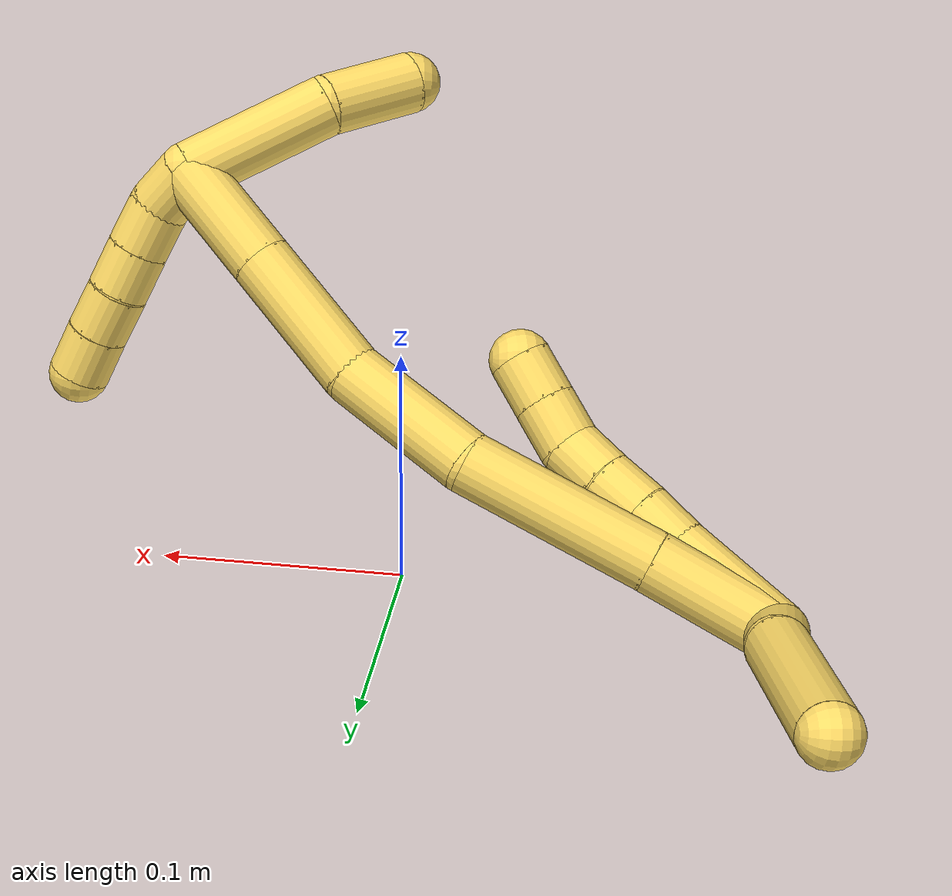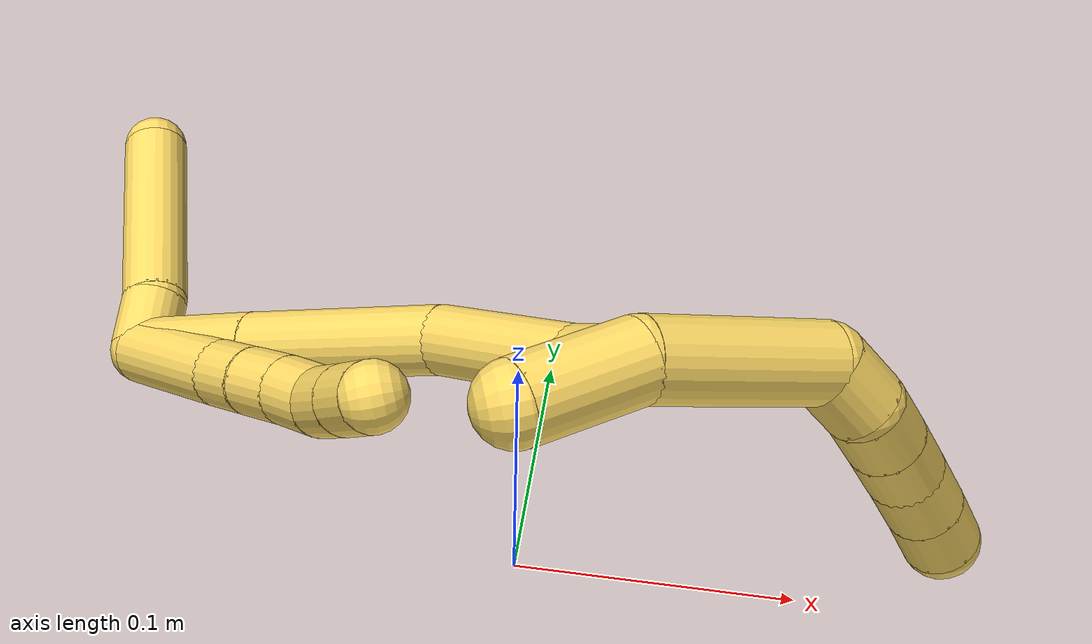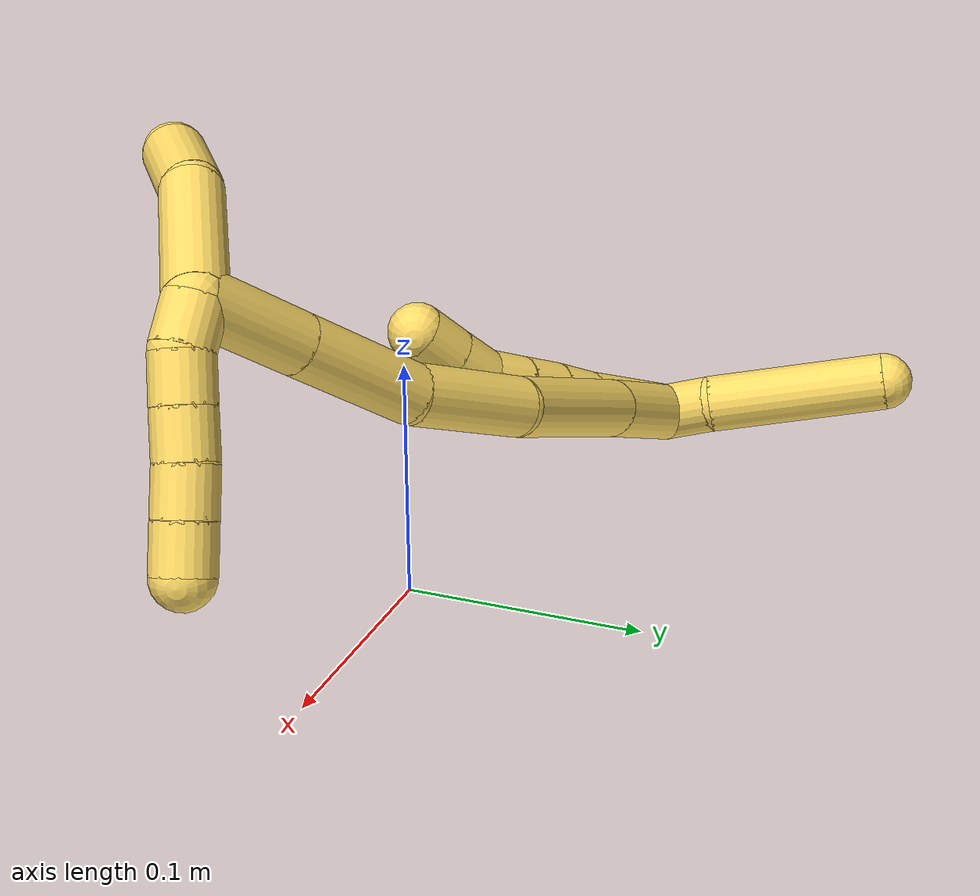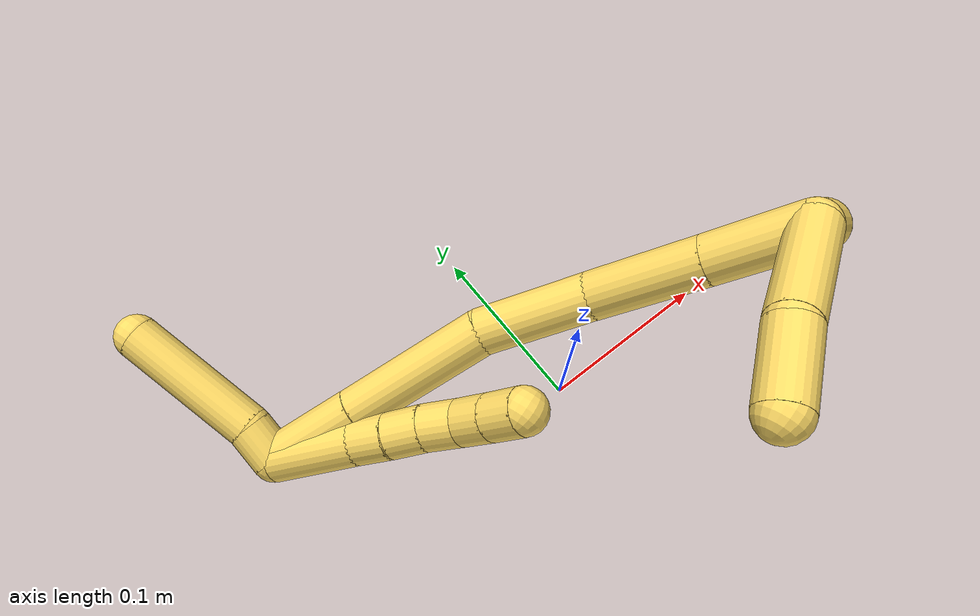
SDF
<sdf version="1.7">
 <world name="default">
  <model name="5">
   <static>0</static>
   <link name="5">
    <collision name="collision-cylinder-e_1_2_8">
     <pose>0.017433 -0.008065 -0.015884 2.67179 0.774574 2.08038</pose>
     <geometry><cylinder><radius>0.0125</radius><length>0.049849</length></cylinder></geometry>
     <surface>
      <friction><ode><mu>1.16</mu><mu2>1.16</mu2><slip1>0</slip1><slip2>0</slip2></ode></friction>
      <contact><ode><kp>1e+06</kp><kd>1</kd><max_vel>0</max_vel><min_depth>0.001</min_depth></ode></contact>
     </surface>
    </collision>
    <visual name="visual-cylinder-e_1_2_8">
     <pose>0.017433 -0.008065 -0.015884 2.67179 0.774574 2.08038</pose>
     <geometry><cylinder><radius>0.0125</radius><length>0.049849</length></cylinder></geometry>
     <material><ambient>1 0.858824 0.4 1</ambient></material>
    </visual>
    <collision name="collision-cylinder-e_2_8_9">
     <pose>0.042393 -0.018974 -0.037802 2.70107 0.845688 2.21821</pose>
     <geometry><cylinder><radius>0.0125</radius><length>0.020115</length></cylinder></geometry>
     <surface>
      <friction><ode><mu>1.16</mu><mu2>1.16</mu2><slip1>0</slip1><slip2>0</slip2></ode></friction>
      <contact><ode><kp>1e+06</kp><kd>1</kd><max_vel>0</max_vel><min_depth>0.001</min_depth></ode></contact>
     </surface>
    </collision>
    <visual name="visual-cylinder-e_2_8_9">
     <pose>0.042393 -0.018974 -0.037802 2.70107 0.845688 2.21821</pose>
     <geometry><cylinder><radius>0.0125</radius><length>0.020115</length></cylinder></geometry>
     <material><ambient>1 0.858824 0.4 1</ambient></material>
    </visual>
    <collision name="collision-cylinder-e_3_9_10">
     <pose>0.056943 -0.024879 -0.050283 2.69839 0.777293 2.13557</pose>
     <geometry><cylinder><radius>0.0125</radius><length>0.020027</length></cylinder></geometry>
     <surface>
      <friction><ode><mu>1.16</mu><mu2>1.16</mu2><slip1>0</slip1><slip2>0</slip2></ode></friction>
      <contact><ode><kp>1e+06</kp><kd>1</kd><max_vel>0</max_vel><min_depth>0.001</min_depth></ode></contact>
     </surface>
    </collision>
    <visual name="visual-cylinder-e_3_9_10">
     <pose>0.056943 -0.024879 -0.050283 2.69839 0.777293 2.13557</pose>
     <geometry><cylinder><radius>0.0125</radius><length>0.020027</length></cylinder></geometry>
     <material><ambient>1 0.858824 0.4 1</ambient></material>
    </visual>
    <collision name="collision-cylinder-e_4_10_11">
     <pose>0.071313 -0.031284 -0.062635 2.62619 0.825221 2.05766</pose>
     <geometry><cylinder><radius>0.0125</radius><length>0.020002</length></cylinder></geometry>
     <surface>
      <friction><ode><mu>1.16</mu><mu2>1.16</mu2><slip1>0</slip1><slip2>0</slip2></ode></friction>
      <contact><ode><kp>1e+06</kp><kd>1</kd><max_vel>0</max_vel><min_depth>0.001</min_depth></ode></contact>
     </surface>
    </collision>
    <visual name="visual-cylinder-e_4_10_11">
     <pose>0.071313 -0.031284 -0.062635 2.62619 0.825221 2.05766</pose>
     <geometry><cylinder><radius>0.0125</radius><length>0.020002</length></cylinder></geometry>
     <material><ambient>1 0.858824 0.4 1</ambient></material>
    </visual>
    <collision name="collision-cylinder-e_5_11_12">
     <pose>0.087507 -0.035287 -0.073159 2.99988 1.08523 2.90725</pose>
     <geometry><cylinder><radius>0.0125</radius><length>0.020005</length></cylinder></geometry>
     <surface>
      <friction><ode><mu>1.16</mu><mu2>1.16</mu2><slip1>0</slip1><slip2>0</slip2></ode></friction>
      <contact><ode><kp>1e+06</kp><kd>1</kd><max_vel>0</max_vel><min_depth>0.001</min_depth></ode></contact>
     </surface>
    </collision>
    <visual name="visual-cylinder-e_5_11_12">
     <pose>0.087507 -0.035287 -0.073159 2.99988 1.08523 2.90725</pose>
     <geometry><cylinder><radius>0.0125</radius><length>0.020005</length></cylinder></geometry>
     <material><ambient>1 0.858824 0.4 1</ambient></material>
    </visual>
    <collision name="collision-cylinder-e_6_12_6">
     <pose>0.105186 -0.036406 -0.08245 3.0436 1.08253 2.97881</pose>
     <geometry><cylinder><radius>0.0125</radius><length>0.020002</length></cylinder></geometry>
     <surface>
      <friction><ode><mu>1.16</mu><mu2>1.16</mu2><slip1>0</slip1><slip2>0</slip2></ode></friction>
      <contact><ode><kp>1e+06</kp><kd>1</kd><max_vel>0</max_vel><min_depth>0.001</min_depth></ode></contact>
     </surface>
    </collision>
    <visual name="visual-cylinder-e_6_12_6">
     <pose>0.105186 -0.036406 -0.08245 3.0436 1.08253 2.97881</pose>
     <geometry><cylinder><radius>0.0125</radius><length>0.020002</length></cylinder></geometry>
     <material><ambient>1 0.858824 0.4 1</ambient></material>
    </visual>
    <collision name="collision-cylinder-e_1_2_13">
     <pose>-0.004585 0.009449 -0.003331 -1.9097 -0.429169 0.597392</pose>
     <geometry><cylinder><radius>0.0125</radius><length>0.022036</length></cylinder></geometry>
     <surface>
      <friction><ode><mu>1.16</mu><mu2>1.16</mu2><slip1>0</slip1><slip2>0</slip2></ode></friction>
      <contact><ode><kp>1e+06</kp><kd>1</kd><max_vel>0</max_vel><min_depth>0.001</min_depth></ode></contact>
     </surface>
    </collision>
    <visual name="visual-cylinder-e_1_2_13">
     <pose>-0.004585 0.009449 -0.003331 -1.9097 -0.429169 0.597392</pose>
     <geometry><cylinder><radius>0.0125</radius><length>0.022036</length></cylinder></geometry>
     <material><ambient>1 0.858824 0.4 1</ambient></material>
    </visual>
    <collision name="collision-cylinder-e_2_13_5">
     <pose>-0.030139 0.051593 -0.009964 -1.67145 -0.567972 0.624547</pose>
     <geometry><cylinder><radius>0.0125</radius><length>0.077964</length></cylinder></geometry>
     <surface>
      <friction><ode><mu>1.16</mu><mu2>1.16</mu2><slip1>0</slip1><slip2>0</slip2></ode></friction>
      <contact><ode><kp>1e+06</kp><kd>1</kd><max_vel>0</max_vel><min_depth>0.001</min_depth></ode></contact>
     </surface>
    </collision>
    <visual name="visual-cylinder-e_2_13_5">
     <pose>-0.030139 0.051593 -0.009964 -1.67145 -0.567972 0.624547</pose>
     <geometry><cylinder><radius>0.0125</radius><length>0.077964</length></cylinder></geometry>
     <material><ambient>1 0.858824 0.4 1</ambient></material>
    </visual>
    <collision name="collision-cylinder-e_1_2_14">
     <pose>0.013817 -0.004128 -0.022425 2.95955 0.544806 2.50998</pose>
     <geometry><cylinder><radius>0.0125</radius><length>0.053323</length></cylinder></geometry>
     <surface>
      <friction><ode><mu>1.16</mu><mu2>1.16</mu2><slip1>0</slip1><slip2>0</slip2></ode></friction>
      <contact><ode><kp>1e+06</kp><kd>1</kd><max_vel>0</max_vel><min_depth>0.001</min_depth></ode></contact>
     </surface>
    </collision>
    <visual name="visual-cylinder-e_1_2_14">
     <pose>0.013817 -0.004128 -0.022425 2.95955 0.544806 2.50998</pose>
     <geometry><cylinder><radius>0.0125</radius><length>0.053323</length></cylinder></geometry>
     <material><ambient>1 0.858824 0.4 1</ambient></material>
    </visual>
    <collision name="collision-cylinder-e_2_14_15">
     <pose>0.047532 -0.01494 -0.078892 2.94772 0.520737 2.44163</pose>
     <geometry><cylinder><radius>0.0125</radius><length>0.079985</length></cylinder></geometry>
     <surface>
      <friction><ode><mu>1.16</mu><mu2>1.16</mu2><slip1>0</slip1><slip2>0</slip2></ode></friction>
      <contact><ode><kp>1e+06</kp><kd>1</kd><max_vel>0</max_vel><min_depth>0.001</min_depth></ode></contact>
     </surface>
    </collision>
    <visual name="visual-cylinder-e_2_14_15">
     <pose>0.047532 -0.01494 -0.078892 2.94772 0.520737 2.44163</pose>
     <geometry><cylinder><radius>0.0125</radius><length>0.079985</length></cylinder></geometry>
     <material><ambient>1 0.858824 0.4 1</ambient></material>
    </visual>
    <collision name="collision-cylinder-e_3_15_16">
     <pose>0.086749 -0.030173 -0.133509 2.74782 0.714341 2.15982</pose>
     <geometry><cylinder><radius>0.0125</radius><length>0.058982</length></cylinder></geometry>
     <surface>
      <friction><ode><mu>1.16</mu><mu2>1.16</mu2><slip1>0</slip1><slip2>0</slip2></ode></friction>
      <contact><ode><kp>1e+06</kp><kd>1</kd><max_vel>0</max_vel><min_depth>0.001</min_depth></ode></contact>
     </surface>
    </collision>
    <visual name="visual-cylinder-e_3_15_16">
     <pose>0.086749 -0.030173 -0.133509 2.74782 0.714341 2.15982</pose>
     <geometry><cylinder><radius>0.0125</radius><length>0.058982</length></cylinder></geometry>
     <material><ambient>1 0.858824 0.4 1</ambient></material>
    </visual>
    <collision name="collision-cylinder-e_4_16_17">
     <pose>0.129633 -0.043089 -0.171315 2.89333 0.924513 2.65085</pose>
     <geometry><cylinder><radius>0.0125</radius><length>0.059031</length></cylinder></geometry>
     <surface>
      <friction><ode><mu>1.16</mu><mu2>1.16</mu2><slip1>0</slip1><slip2>0</slip2></ode></friction>
      <contact><ode><kp>1e+06</kp><kd>1</kd><max_vel>0</max_vel><min_depth>0.001</min_depth></ode></contact>
     </surface>
    </collision>
    <visual name="visual-cylinder-e_4_16_17">
     <pose>0.129633 -0.043089 -0.171315 2.89333 0.924513 2.65085</pose>
     <geometry><cylinder><radius>0.0125</radius><length>0.059031</length></cylinder></geometry>
     <material><ambient>1 0.858824 0.4 1</ambient></material>
    </visual>
    <collision name="collision-cylinder-e_5_17_1">
     <pose>0.172621 -0.050938 -0.202791 2.90189 0.92414 2.66708</pose>
     <geometry><cylinder><radius>0.0125</radius><length>0.048678</length></cylinder></geometry>
     <surface>
      <friction><ode><mu>1.16</mu><mu2>1.16</mu2><slip1>0</slip1><slip2>0</slip2></ode></friction>
      <contact><ode><kp>1e+06</kp><kd>1</kd><max_vel>0</max_vel><min_depth>0.001</min_depth></ode></contact>
     </surface>
    </collision>
    <visual name="visual-cylinder-e_5_17_1">
     <pose>0.172621 -0.050938 -0.202791 2.90189 0.92414 2.66708</pose>
     <geometry><cylinder><radius>0.0125</radius><length>0.048678</length></cylinder></geometry>
     <material><ambient>1 0.858824 0.4 1</ambient></material>
    </visual>
    <collision name="collision-cylinder-e_1_1_18">
     <pose>0.205973 -0.04875 -0.190149 -0.20783 0.469108 -0.049831</pose>
     <geometry><cylinder><radius>0.0125</radius><length>0.061614</length></cylinder></geometry>
     <surface>
      <friction><ode><mu>1.16</mu><mu2>1.16</mu2><slip1>0</slip1><slip2>0</slip2></ode></friction>
      <contact><ode><kp>1e+06</kp><kd>1</kd><max_vel>0</max_vel><min_depth>0.001</min_depth></ode></contact>
     </surface>
    </collision>
    <visual name="visual-cylinder-e_1_1_18">
     <pose>0.205973 -0.04875 -0.190149 -0.20783 0.469108 -0.049831</pose>
     <geometry><cylinder><radius>0.0125</radius><length>0.061614</length></cylinder></geometry>
     <material><ambient>1 0.858824 0.4 1</ambient></material>
    </visual>
    <collision name="collision-cylinder-e_2_18_4">
     <pose>0.227084 -0.045388 -0.145613 0.130045 0.383578 0.025286</pose>
     <geometry><cylinder><radius>0.0125</radius><length>0.038386</length></cylinder></geometry>
     <surface>
      <friction><ode><mu>1.16</mu><mu2>1.16</mu2><slip1>0</slip1><slip2>0</slip2></ode></friction>
      <contact><ode><kp>1e+06</kp><kd>1</kd><max_vel>0</max_vel><min_depth>0.001</min_depth></ode></contact>
     </surface>
    </collision>
    <visual name="visual-cylinder-e_2_18_4">
     <pose>0.227084 -0.045388 -0.145613 0.130045 0.383578 0.025286</pose>
     <geometry><cylinder><radius>0.0125</radius><length>0.038386</length></cylinder></geometry>
     <material><ambient>1 0.858824 0.4 1</ambient></material>
    </visual>
    <collision name="collision-cylinder-e_1_1_19">
     <pose>0.187198 -0.061481 -0.222199 2.20209 -0.506121 -0.942296</pose>
     <geometry><cylinder><radius>0.0125</radius><length>0.02</length></cylinder></geometry>
     <surface>
      <friction><ode><mu>1.16</mu><mu2>1.16</mu2><slip1>0</slip1><slip2>0</slip2></ode></friction>
      <contact><ode><kp>1e+06</kp><kd>1</kd><max_vel>0</max_vel><min_depth>0.001</min_depth></ode></contact>
     </surface>
    </collision>
    <visual name="visual-cylinder-e_1_1_19">
     <pose>0.187198 -0.061481 -0.222199 2.20209 -0.506121 -0.942296</pose>
     <geometry><cylinder><radius>0.0125</radius><length>0.02</length></cylinder></geometry>
     <material><ambient>1 0.858824 0.4 1</ambient></material>
    </visual>
    <collision name="collision-cylinder-e_2_19_20">
     <pose>0.175083 -0.074384 -0.230974 2.12473 -0.813469 -1.31602</pose>
     <geometry><cylinder><radius>0.0125</radius><length>0.02</length></cylinder></geometry>
     <surface>
      <friction><ode><mu>1.16</mu><mu2>1.16</mu2><slip1>0</slip1><slip2>0</slip2></ode></friction>
      <contact><ode><kp>1e+06</kp><kd>1</kd><max_vel>0</max_vel><min_depth>0.001</min_depth></ode></contact>
     </surface>
    </collision>
    <visual name="visual-cylinder-e_2_19_20">
     <pose>0.175083 -0.074384 -0.230974 2.12473 -0.813469 -1.31602</pose>
     <geometry><cylinder><radius>0.0125</radius><length>0.02</length></cylinder></geometry>
     <material><ambient>1 0.858824 0.4 1</ambient></material>
    </visual>
    <collision name="collision-cylinder-e_3_20_21">
     <pose>0.160446 -0.086031 -0.238048 2.10839 -0.828788 -1.31778</pose>
     <geometry><cylinder><radius>0.0125</radius><length>0.02</length></cylinder></geometry>
     <surface>
      <friction><ode><mu>1.16</mu><mu2>1.16</mu2><slip1>0</slip1><slip2>0</slip2></ode></friction>
      <contact><ode><kp>1e+06</kp><kd>1</kd><max_vel>0</max_vel><min_depth>0.001</min_depth></ode></contact>
     </surface>
    </collision>
    <visual name="visual-cylinder-e_3_20_21">
     <pose>0.160446 -0.086031 -0.238048 2.10839 -0.828788 -1.31778</pose>
     <geometry><cylinder><radius>0.0125</radius><length>0.02</length></cylinder></geometry>
     <material><ambient>1 0.858824 0.4 1</ambient></material>
    </visual>
    <collision name="collision-cylinder-e_4_21_22">
     <pose>0.14618 -0.098222 -0.244926 2.06208 -0.76068 -1.17694</pose>
     <geometry><cylinder><radius>0.0125</radius><length>0.02</length></cylinder></geometry>
     <surface>
      <friction><ode><mu>1.16</mu><mu2>1.16</mu2><slip1>0</slip1><slip2>0</slip2></ode></friction>
      <contact><ode><kp>1e+06</kp><kd>1</kd><max_vel>0</max_vel><min_depth>0.001</min_depth></ode></contact>
     </surface>
    </collision>
    <visual name="visual-cylinder-e_4_21_22">
     <pose>0.14618 -0.098222 -0.244926 2.06208 -0.76068 -1.17694</pose>
     <geometry><cylinder><radius>0.0125</radius><length>0.02</length></cylinder></geometry>
     <material><ambient>1 0.858824 0.4 1</ambient></material>
    </visual>
    <collision name="collision-cylinder-e_5_22_3">
     <pose>0.132351 -0.111089 -0.251493 2.02318 -0.766294 -1.14435</pose>
     <geometry><cylinder><radius>0.0125</radius><length>0.02</length></cylinder></geometry>
     <surface>
      <friction><ode><mu>1.16</mu><mu2>1.16</mu2><slip1>0</slip1><slip2>0</slip2></ode></friction>
      <contact><ode><kp>1e+06</kp><kd>1</kd><max_vel>0</max_vel><min_depth>0.001</min_depth></ode></contact>
     </surface>
    </collision>
    <visual name="visual-cylinder-e_5_22_3">
     <pose>0.132351 -0.111089 -0.251493 2.02318 -0.766294 -1.14435</pose>
     <geometry><cylinder><radius>0.0125</radius><length>0.02</length></cylinder></geometry>
     <material><ambient>1 0.858824 0.4 1</ambient></material>
    </visual>
    <collision name="collision-sphere-3">
     <pose>0.125417 -0.117569 -0.254642 0 -0 0</pose>
     <geometry><sphere><radius>0.0125</radius></sphere></geometry>
     <surface>
      <friction><ode><mu>1.16</mu><mu2>1.16</mu2><slip1>0</slip1><slip2>0</slip2></ode></friction>
      <contact><ode><kp>1e+06</kp><kd>1</kd><max_vel>0</max_vel><min_depth>0.001</min_depth></ode></contact>
     </surface>
    </collision>
    <visual name="visual-sphere-3">
     <pose>0.125417 -0.117569 -0.254642 0 -0 0</pose>
     <geometry><sphere><radius>0.0125</radius></sphere></geometry>
     <material><ambient>1 0.858824 0.4 1</ambient></material>
    </visual>
    <collision name="collision-sphere-22">
     <pose>0.139286 -0.104609 -0.248343 0 -0 0</pose>
     <geometry><sphere><radius>0.0125</radius></sphere></geometry>
     <surface>
      <friction><ode><mu>1.16</mu><mu2>1.16</mu2><slip1>0</slip1><slip2>0</slip2></ode></friction>
      <contact><ode><kp>1e+06</kp><kd>1</kd><max_vel>0</max_vel><min_depth>0.001</min_depth></ode></contact>
     </surface>
    </collision>
    <visual name="visual-sphere-22">
     <pose>0.139286 -0.104609 -0.248343 0 -0 0</pose>
     <geometry><sphere><radius>0.0125</radius></sphere></geometry>
     <material><ambient>1 0.858824 0.4 1</ambient></material>
    </visual>
    <collision name="collision-sphere-21">
     <pose>0.153074 -0.091835 -0.241509 0 -0 0</pose>
     <geometry><sphere><radius>0.0125</radius></sphere></geometry>
     <surface>
      <friction><ode><mu>1.16</mu><mu2>1.16</mu2><slip1>0</slip1><slip2>0</slip2></ode></friction>
      <contact><ode><kp>1e+06</kp><kd>1</kd><max_vel>0</max_vel><min_depth>0.001</min_depth></ode></contact>
     </surface>
    </collision>
    <visual name="visual-sphere-21">
     <pose>0.153074 -0.091835 -0.241509 0 -0 0</pose>
     <geometry><sphere><radius>0.0125</radius></sphere></geometry>
     <material><ambient>1 0.858824 0.4 1</ambient></material>
    </visual>
    <collision name="collision-sphere-20">
     <pose>0.167817 -0.080226 -0.234588 0 -0 0</pose>
     <geometry><sphere><radius>0.0125</radius></sphere></geometry>
     <surface>
      <friction><ode><mu>1.16</mu><mu2>1.16</mu2><slip1>0</slip1><slip2>0</slip2></ode></friction>
      <contact><ode><kp>1e+06</kp><kd>1</kd><max_vel>0</max_vel><min_depth>0.001</min_depth></ode></contact>
     </surface>
    </collision>
    <visual name="visual-sphere-20">
     <pose>0.167817 -0.080226 -0.234588 0 -0 0</pose>
     <geometry><sphere><radius>0.0125</radius></sphere></geometry>
     <material><ambient>1 0.858824 0.4 1</ambient></material>
    </visual>
    <collision name="collision-sphere-19">
     <pose>0.18235 -0.068541 -0.22736 0 -0 0</pose>
     <geometry><sphere><radius>0.0125</radius></sphere></geometry>
     <surface>
      <friction><ode><mu>1.16</mu><mu2>1.16</mu2><slip1>0</slip1><slip2>0</slip2></ode></friction>
      <contact><ode><kp>1e+06</kp><kd>1</kd><max_vel>0</max_vel><min_depth>0.001</min_depth></ode></contact>
     </surface>
    </collision>
    <visual name="visual-sphere-19">
     <pose>0.18235 -0.068541 -0.22736 0 -0 0</pose>
     <geometry><sphere><radius>0.0125</radius></sphere></geometry>
     <material><ambient>1 0.858824 0.4 1</ambient></material>
    </visual>
    <collision name="collision-sphere-12">
     <pose>0.096354 -0.035947 -0.077781 0 -0 0</pose>
     <geometry><sphere><radius>0.0125</radius></sphere></geometry>
     <surface>
      <friction><ode><mu>1.16</mu><mu2>1.16</mu2><slip1>0</slip1><slip2>0</slip2></ode></friction>
      <contact><ode><kp>1e+06</kp><kd>1</kd><max_vel>0</max_vel><min_depth>0.001</min_depth></ode></contact>
     </surface>
    </collision>
    <visual name="visual-sphere-12">
     <pose>0.096354 -0.035947 -0.077781 0 -0 0</pose>
     <geometry><sphere><radius>0.0125</radius></sphere></geometry>
     <material><ambient>1 0.858824 0.4 1</ambient></material>
    </visual>
    <collision name="collision-sphere-11">
     <pose>0.078661 -0.034628 -0.068538 0 -0 0</pose>
     <geometry><sphere><radius>0.0125</radius></sphere></geometry>
     <surface>
      <friction><ode><mu>1.16</mu><mu2>1.16</mu2><slip1>0</slip1><slip2>0</slip2></ode></friction>
      <contact><ode><kp>1e+06</kp><kd>1</kd><max_vel>0</max_vel><min_depth>0.001</min_depth></ode></contact>
     </surface>
    </collision>
    <visual name="visual-sphere-11">
     <pose>0.078661 -0.034628 -0.068538 0 -0 0</pose>
     <geometry><sphere><radius>0.0125</radius></sphere></geometry>
     <material><ambient>1 0.858824 0.4 1</ambient></material>
    </visual>
    <collision name="collision-sphere-10">
     <pose>0.063966 -0.02794 -0.056731 0 -0 0</pose>
     <geometry><sphere><radius>0.0125</radius></sphere></geometry>
     <surface>
      <friction><ode><mu>1.16</mu><mu2>1.16</mu2><slip1>0</slip1><slip2>0</slip2></ode></friction>
      <contact><ode><kp>1e+06</kp><kd>1</kd><max_vel>0</max_vel><min_depth>0.001</min_depth></ode></contact>
     </surface>
    </collision>
    <visual name="visual-sphere-10">
     <pose>0.063966 -0.02794 -0.056731 0 -0 0</pose>
     <geometry><sphere><radius>0.0125</radius></sphere></geometry>
     <material><ambient>1 0.858824 0.4 1</ambient></material>
    </visual>
    <collision name="collision-sphere-9">
     <pose>0.04992 -0.021818 -0.043835 0 -0 0</pose>
     <geometry><sphere><radius>0.0125</radius></sphere></geometry>
     <surface>
      <friction><ode><mu>1.16</mu><mu2>1.16</mu2><slip1>0</slip1><slip2>0</slip2></ode></friction>
      <contact><ode><kp>1e+06</kp><kd>1</kd><max_vel>0</max_vel><min_depth>0.001</min_depth></ode></contact>
     </surface>
    </collision>
    <visual name="visual-sphere-9">
     <pose>0.04992 -0.021818 -0.043835 0 -0 0</pose>
     <geometry><sphere><radius>0.0125</radius></sphere></geometry>
     <material><ambient>1 0.858824 0.4 1</ambient></material>
    </visual>
    <collision name="collision-sphere-2">
     <geometry><sphere><radius>0.0125</radius></sphere></geometry>
     <surface>
      <friction><ode><mu>1.16</mu><mu2>1.16</mu2><slip1>0</slip1><slip2>0</slip2></ode></friction>
      <contact><ode><kp>1e+06</kp><kd>1</kd><max_vel>0</max_vel><min_depth>0.001</min_depth></ode></contact>
     </surface>
    </collision>
    <visual name="visual-sphere-2">
     <geometry><sphere><radius>0.0125</radius></sphere></geometry>
     <material><ambient>1 0.858824 0.4 1</ambient></material>
    </visual>
    <collision name="collision-sphere-8">
     <pose>0.034865 -0.016129 -0.031768 0 -0 0</pose>
     <geometry><sphere><radius>0.0125</radius></sphere></geometry>
     <surface>
      <friction><ode><mu>1.16</mu><mu2>1.16</mu2><slip1>0</slip1><slip2>0</slip2></ode></friction>
      <contact><ode><kp>1e+06</kp><kd>1</kd><max_vel>0</max_vel><min_depth>0.001</min_depth></ode></contact>
     </surface>
    </collision>
    <visual name="visual-sphere-8">
     <pose>0.034865 -0.016129 -0.031768 0 -0 0</pose>
     <geometry><sphere><radius>0.0125</radius></sphere></geometry>
     <material><ambient>1 0.858824 0.4 1</ambient></material>
    </visual>
    <collision name="collision-sphere-6">
     <pose>0.114018 -0.036864 -0.087119 0 -0 0</pose>
     <geometry><sphere><radius>0.0125</radius></sphere></geometry>
     <surface>
      <friction><ode><mu>1.16</mu><mu2>1.16</mu2><slip1>0</slip1><slip2>0</slip2></ode></friction>
      <contact><ode><kp>1e+06</kp><kd>1</kd><max_vel>0</max_vel><min_depth>0.001</min_depth></ode></contact>
     </surface>
    </collision>
    <visual name="visual-sphere-6">
     <pose>0.114018 -0.036864 -0.087119 0 -0 0</pose>
     <geometry><sphere><radius>0.0125</radius></sphere></geometry>
     <material><ambient>1 0.858824 0.4 1</ambient></material>
    </visual>
    <collision name="collision-sphere-13">
     <pose>-0.00917 0.018898 -0.006662 0 -0 0</pose>
     <geometry><sphere><radius>0.0125</radius></sphere></geometry>
     <surface>
      <friction><ode><mu>1.16</mu><mu2>1.16</mu2><slip1>0</slip1><slip2>0</slip2></ode></friction>
      <contact><ode><kp>1e+06</kp><kd>1</kd><max_vel>0</max_vel><min_depth>0.001</min_depth></ode></contact>
     </surface>
    </collision>
    <visual name="visual-sphere-13">
     <pose>-0.00917 0.018898 -0.006662 0 -0 0</pose>
     <geometry><sphere><radius>0.0125</radius></sphere></geometry>
     <material><ambient>1 0.858824 0.4 1</ambient></material>
    </visual>
    <collision name="collision-sphere-5">
     <pose>-0.051108 0.084288 -0.013265 0 -0 0</pose>
     <geometry><sphere><radius>0.0125</radius></sphere></geometry>
     <surface>
      <friction><ode><mu>1.16</mu><mu2>1.16</mu2><slip1>0</slip1><slip2>0</slip2></ode></friction>
      <contact><ode><kp>1e+06</kp><kd>1</kd><max_vel>0</max_vel><min_depth>0.001</min_depth></ode></contact>
     </surface>
    </collision>
    <visual name="visual-sphere-5">
     <pose>-0.051108 0.084288 -0.013265 0 -0 0</pose>
     <geometry><sphere><radius>0.0125</radius></sphere></geometry>
     <material><ambient>1 0.858824 0.4 1</ambient></material>
    </visual>
    <collision name="collision-sphere-14">
     <pose>0.027635 -0.008256 -0.04485 0 -0 0</pose>
     <geometry><sphere><radius>0.0125</radius></sphere></geometry>
     <surface>
      <friction><ode><mu>1.16</mu><mu2>1.16</mu2><slip1>0</slip1><slip2>0</slip2></ode></friction>
      <contact><ode><kp>1e+06</kp><kd>1</kd><max_vel>0</max_vel><min_depth>0.001</min_depth></ode></contact>
     </surface>
    </collision>
    <visual name="visual-sphere-14">
     <pose>0.027635 -0.008256 -0.04485 0 -0 0</pose>
     <geometry><sphere><radius>0.0125</radius></sphere></geometry>
     <material><ambient>1 0.858824 0.4 1</ambient></material>
    </visual>
    <collision name="collision-sphere-15">
     <pose>0.067429 -0.021624 -0.112933 0 -0 0</pose>
     <geometry><sphere><radius>0.0125</radius></sphere></geometry>
     <surface>
      <friction><ode><mu>1.16</mu><mu2>1.16</mu2><slip1>0</slip1><slip2>0</slip2></ode></friction>
      <contact><ode><kp>1e+06</kp><kd>1</kd><max_vel>0</max_vel><min_depth>0.001</min_depth></ode></contact>
     </surface>
    </collision>
    <visual name="visual-sphere-15">
     <pose>0.067429 -0.021624 -0.112933 0 -0 0</pose>
     <geometry><sphere><radius>0.0125</radius></sphere></geometry>
     <material><ambient>1 0.858824 0.4 1</ambient></material>
    </visual>
    <collision name="collision-sphere-16">
     <pose>0.106069 -0.038721 -0.154085 0 -0 0</pose>
     <geometry><sphere><radius>0.0125</radius></sphere></geometry>
     <surface>
      <friction><ode><mu>1.16</mu><mu2>1.16</mu2><slip1>0</slip1><slip2>0</slip2></ode></friction>
      <contact><ode><kp>1e+06</kp><kd>1</kd><max_vel>0</max_vel><min_depth>0.001</min_depth></ode></contact>
     </surface>
    </collision>
    <visual name="visual-sphere-16">
     <pose>0.106069 -0.038721 -0.154085 0 -0 0</pose>
     <geometry><sphere><radius>0.0125</radius></sphere></geometry>
     <material><ambient>1 0.858824 0.4 1</ambient></material>
    </visual>
    <collision name="collision-sphere-17">
     <pose>0.153196 -0.047457 -0.188545 0 -0 0</pose>
     <geometry><sphere><radius>0.0125</radius></sphere></geometry>
     <surface>
      <friction><ode><mu>1.16</mu><mu2>1.16</mu2><slip1>0</slip1><slip2>0</slip2></ode></friction>
      <contact><ode><kp>1e+06</kp><kd>1</kd><max_vel>0</max_vel><min_depth>0.001</min_depth></ode></contact>
     </surface>
    </collision>
    <visual name="visual-sphere-17">
     <pose>0.153196 -0.047457 -0.188545 0 -0 0</pose>
     <geometry><sphere><radius>0.0125</radius></sphere></geometry>
     <material><ambient>1 0.858824 0.4 1</ambient></material>
    </visual>
    <collision name="collision-sphere-1">
     <pose>0.192046 -0.05442 -0.217037 0 -0 0</pose>
     <geometry><sphere><radius>0.0125</radius></sphere></geometry>
     <surface>
      <friction><ode><mu>1.16</mu><mu2>1.16</mu2><slip1>0</slip1><slip2>0</slip2></ode></friction>
      <contact><ode><kp>1e+06</kp><kd>1</kd><max_vel>0</max_vel><min_depth>0.001</min_depth></ode></contact>
     </surface>
    </collision>
    <visual name="visual-sphere-1">
     <pose>0.192046 -0.05442 -0.217037 0 -0 0</pose>
     <geometry><sphere><radius>0.0125</radius></sphere></geometry>
     <material><ambient>1 0.858824 0.4 1</ambient></material>
    </visual>
    <collision name="collision-sphere-18">
     <pose>0.219901 -0.04308 -0.163261 0 -0 0</pose>
     <geometry><sphere><radius>0.0125</radius></sphere></geometry>
     <surface>
      <friction><ode><mu>1.16</mu><mu2>1.16</mu2><slip1>0</slip1><slip2>0</slip2></ode></friction>
      <contact><ode><kp>1e+06</kp><kd>1</kd><max_vel>0</max_vel><min_depth>0.001</min_depth></ode></contact>
     </surface>
    </collision>
    <visual name="visual-sphere-18">
     <pose>0.219901 -0.04308 -0.163261 0 -0 0</pose>
     <geometry><sphere><radius>0.0125</radius></sphere></geometry>
     <material><ambient>1 0.858824 0.4 1</ambient></material>
    </visual>
    <collision name="collision-sphere-4">
     <pose>0.234267 -0.047696 -0.127965 0 -0 0</pose>
     <geometry><sphere><radius>0.0125</radius></sphere></geometry>
     <surface>
      <friction><ode><mu>1.16</mu><mu2>1.16</mu2><slip1>0</slip1><slip2>0</slip2></ode></friction>
      <contact><ode><kp>1e+06</kp><kd>1</kd><max_vel>0</max_vel><min_depth>0.001</min_depth></ode></contact>
     </surface>
    </collision>
    <visual name="visual-sphere-4">
     <pose>0.234267 -0.047696 -0.127965 0 -0 0</pose>
     <geometry><sphere><radius>0.0125</radius></sphere></geometry>
     <material><ambient>1 0.858824 0.4 1</ambient></material>
    </visual>
    <inertial>
     <pose>0.091781 -0.027599 -0.112264 0 -0 0</pose>
     <mass>0.75</mass>
     <inertia>
      <ixx>8.4e-05</ixx>
      <ixy>0</ixy>
      <ixz>0</ixz>
      <iyy>0.000223</iyy>
      <iyz>0</iyz>
      <izz>-9.7e-05</izz>
     </inertia>
    </inertial>
   </link>
   <pose>-0.153044 0.060512 0.02606 1.75811 -0.813201 -1.39036</pose>
  </model>
 </world>
</sdf>
